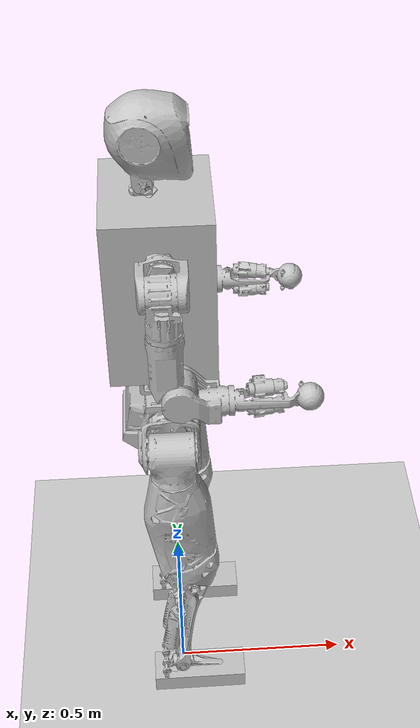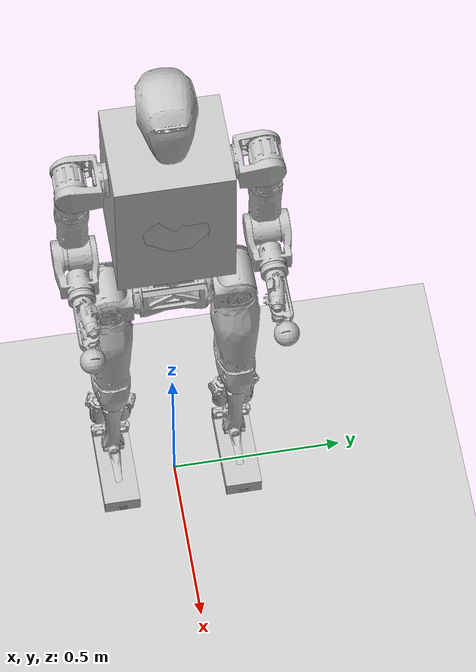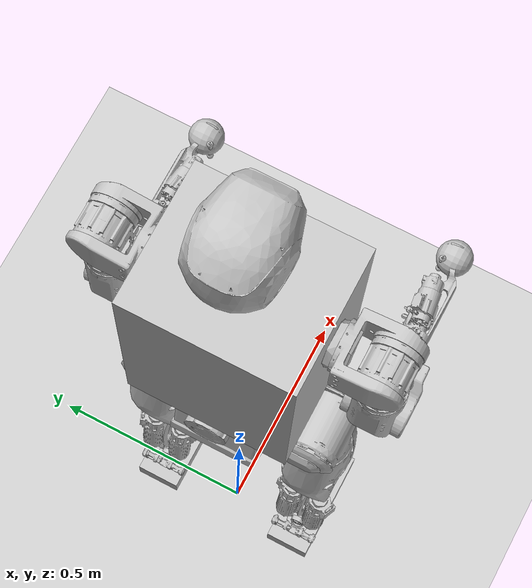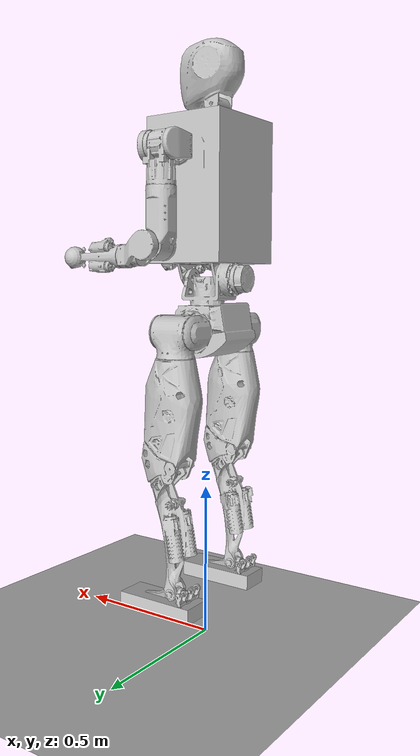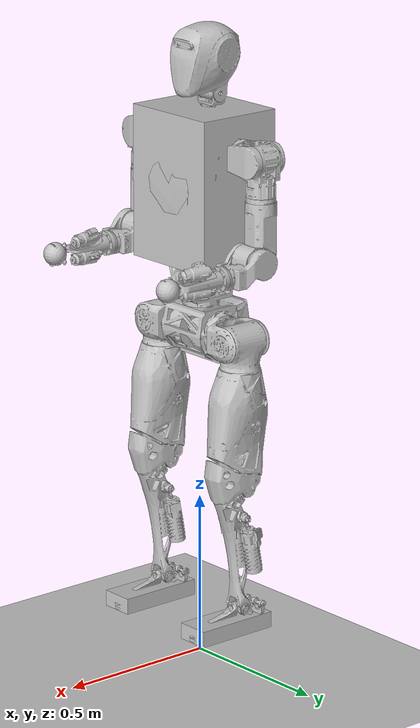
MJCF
<mujoco model="scene">
<include file="azureloong_v9.xml"/>

<statistic center="0 0 0.1" extent="0.8"/>

<visual>
  <headlight diffuse="0.6 0.6 0.6" ambient="0.3 0.3 0.3" specular="0 0 0"/>
  <rgba haze="0.15 0.25 0.35 1"/>
  <global azimuth="150" elevation="-20"/>
</visual>

<asset>
  <texture type="skybox" builtin="gradient" rgb1="0.3 0.5 0.7" rgb2="0 0 0" width="512" height="3072"/>
  <texture type="2d" name="groundplane" builtin="checker" mark="edge" rgb1="0.2 0.3 0.4" rgb2="0.1 0.2 0.3"
           markrgb="0.8 0.8 0.8" width="300" height="300"/>
  <material name="groundplane" texture="groundplane" texuniform="true" texrepeat="5 5" reflectance="0.2"/>
</asset>

<worldbody>
  <light pos="0 0 1.5" dir="0 0 -1" directional="true"/>
  <geom name="floor" size="0 0 1" pos="0 0 0" type="plane" material="groundplane"/>
</worldbody>
</mujoco>

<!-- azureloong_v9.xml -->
<mujoco model="azureloong_v9">
  <compiler angle="radian" meshdir="meshes/"/>
    <option timestep="0.001"  tolerance="1e-10" solver="Newton" jacobian="dense" cone="pyramidal" gravity="0 0 -9.81">  <!--integrator="RK4"  iteration="50"-->
        <flag contact="enable" energy="enable"/>
    </option>
    <size njmax="500" nconmax="1000" />
    <default>
        <light castshadow="false" />
        <geom rgba="0.784 0.784 0.784 1"/>
        <default class="visual">
            <geom contype="0" conaffinity="0" group="1" type="mesh" euler="1.57 0 0" />
        </default>
        <default class="collision">
            <geom contype="1" conaffinity="1" friction="1.0 0.3 0.3"
                margin="0.001" group="0" euler="1.57 0 0" />
        </default>
        <joint damping="0.1" frictionloss="0.02" armature="0.01"/>
    </default>
  <asset>
    <mesh name="base_link" file="base_link.STL"/>
    <mesh name="link_head_yaw" file="link_head_yaw.STL"/>
    <mesh name="link_head_pitch" file="link_head_pitch.STL"/>
    <mesh name="link_waist_roll" file="link_waist_roll.STL"/>
    <mesh name="link_waist_yaw" file="link_waist_yaw.STL"/>
    <mesh name="link_hip_r_pitch" file="link_hip_r_pitch.STL"/>
    <mesh name="link_hip_r_roll" file="link_hip_r_roll.STL"/>
    <mesh name="link_hip_r_yaw" file="link_hip_r_yaw.STL"/>
    <mesh name="link_knee_r_pitch" file="link_knee_r_pitch.STL"/>
    <mesh name="link_ankle_r_pitch" file="link_ankle_r_pitch.STL"/>
    <mesh name="link_ankle_r_roll" file="link_ankle_r_roll.STL"/>
    <mesh name="link_hip_l_pitch" file="link_hip_l_pitch.STL"/>
    <mesh name="link_hip_l_roll" file="link_hip_l_roll.STL"/>
    <mesh name="link_hip_l_yaw" file="link_hip_l_yaw.STL"/>
    <mesh name="link_knee_l_pitch" file="link_knee_l_pitch.STL"/>
    <mesh name="link_ankle_l_pitch" file="link_ankle_l_pitch.STL"/>
    <mesh name="link_ankle_l_roll" file="link_ankle_l_roll.STL"/>
    <mesh name="link_arm_r_01" file="link_arm_r_01.STL"/>
    <mesh name="link_arm_r_02" file="link_arm_r_02.STL"/>
    <mesh name="link_arm_r_03" file="link_arm_r_03.STL"/>
    <mesh name="link_arm_r_04" file="link_arm_r_04.STL"/>
    <mesh name="link_arm_r_05" file="link_arm_r_05.STL"/>
    <mesh name="link_arm_r_06" file="link_arm_r_06.STL"/>
    <mesh name="link_arm_r_07" file="link_arm_r_07.STL"/>
    <mesh name="link_arm_l_01" file="link_arm_l_01.STL"/>
    <mesh name="link_arm_l_02" file="link_arm_l_02.STL"/>
    <mesh name="link_arm_l_03" file="link_arm_l_03.STL"/>
    <mesh name="link_arm_l_04" file="link_arm_l_04.STL"/>
    <mesh name="link_arm_l_05" file="link_arm_l_05.STL"/>
    <mesh name="link_arm_l_06" file="link_arm_l_06.STL"/>
    <mesh name="link_arm_l_07" file="link_arm_l_07.STL"/>
  </asset>
  <worldbody>
    <body name="base_link" pos="0 0 1.25">
      <freejoint name="float_base"/>
      <inertial  pos="-0.011474 -0.0069363 0.21891" mass="24.307" fullinertia="0.59845 0.46392 0.29986 0.0016581 0.025644 -0.014216" />
      <geom type="mesh" contype="0" conaffinity="0" group="1" density="0" rgba="0.75294 0.75294 0.75294 1" mesh="base_link"/>
      <geom name="base_link_collision" size="0.1375 0.1625 0.2325" pos="-0.013 0 0.2325" type="box" rgba="0.75294 0.75294 0.75294 1"/>
      <site name="imu" quat="1 0 0 0"/>
      <body name="link_arm_l_01" pos="-0.0075002 0.17524 0.35025">
        <inertial pos="0.0031719 0.044974 3.524e-05" quat="-0.0106847 0.7074 0.00872866 0.706679" mass="0.57933" diaginertia="0.0020563 0.00175975 0.00116215"/>
        <joint name="J_arm_l_01" pos="0 0 0" axis="0 1 0" limited="true" range="-3.1416 3.1416"/>
        <geom type="mesh" contype="0" conaffinity="0" group="1" density="0" rgba="0.75294 0.75294 0.75294 1" mesh="link_arm_l_01"/>
        <body name="link_arm_l_02" pos="0 0.088 0">
          <inertial pos="0.0039951 2.47e-06 -0.048645" quat="0.706728 0.0319836 0.0320388 0.706036" mass="3.2937" diaginertia="0.011243 0.0108914 0.00351274"/>
          <joint name="J_arm_l_02" pos="0 0 0" axis="1 0 0" limited="true" range="0 3.1416"/>
          <geom type="mesh" contype="0" conaffinity="0" group="1" density="0" rgba="0.75294 0.75294 0.75294 1" mesh="link_arm_l_02"/>
          <body name="link_arm_l_03" pos="0 0 -0.122">
            <inertial pos="0.0199347 0.00744666 -0.143271" quat="0.379808 -0.0923652 -0.0855735 0.916456" mass="1.79702" diaginertia="0.00762178 0.00757974 0.00204741"/>
            <joint name="J_arm_l_03" pos="0 0 0" axis="0 0 1" limited="true" range="-3.1416 3.1416"/>
            <geom type="mesh" contype="0" conaffinity="0" group="1" density="0" rgba="0.75294 0.75294 0.75294 1" mesh="link_arm_l_03"/>
            <body name="link_arm_l_04" pos="0.03 0 -0.178">
              <inertial pos="0.0749516 0.00483148 -0.0230651" quat="0.109396 0.798106 -0.0740883 0.587852" mass="1.28644" diaginertia="0.0040918 0.00327713 0.00180294"/>
              <joint name="J_arm_l_04" pos="0 0 0" axis="0 1 0" limited="true" range="-1.5708 2.3562"/>
              <geom type="mesh" contype="0" conaffinity="0" group="1" density="0" rgba="0.75294 0.75294 0.75294 1" mesh="link_arm_l_04"/>
              <body name="link_arm_l_05" pos="0.1198 0 -0.03">
                <inertial pos="0.0901946 -0.0065972 -0.00028185" quat="0.52046 0.517873 0.481843 0.478285" mass="1.23772" diaginertia="0.0029895 0.00231002 0.00117052"/>
                <joint name="J_arm_l_05" pos="0 0 0" axis="1 0 0" limited="true" range="-3.1416 3.1416"/>
                <geom type="mesh" contype="0" conaffinity="0" group="1" density="0" rgba="0.75294 0.75294 0.75294 1" mesh="link_arm_l_05"/>
                <body name="link_arm_l_06" pos="0.1878 -0.0025 0">
                  <inertial pos="5.836e-05 -1.702e-05 0" mass="0.0159267" diaginertia="7.3e-07 6.8e-07 4.4e-07"/>
                  <joint name="J_arm_l_06" pos="0 0 0" axis="0 0 1" limited="true" range="-1.199 1.199"/>
                  <geom type="mesh" contype="0" conaffinity="0" group="1" density="0" rgba="1 1 1 1" mesh="link_arm_l_06"/>
                  <body name="link_arm_l_07">
                    <inertial pos="0.0148544 0.00216611 0.00068011" quat="0.998192 0.0011013 0.00568353 0.0598284" mass="0.089866" diaginertia="3.70197e-05 2.80825e-05 2.01978e-05"/>
                    <joint name="J_arm_l_07" pos="0 0 0" axis="0 1 0" limited="true" range="-0.48869 0.48869"/>
                    <geom type="mesh" contype="0" conaffinity="0" group="1" density="0" rgba="0.75294 0.75294 0.75294 1" mesh="link_arm_l_07"/>
                    <geom name="link_arm_l_07_collision" class="collision" type="sphere" size="0.035" pos="0.0148544 0.00216611 0.00068011" rgba="0.75294 0.75294 0.75294 1"/>
                  </body>
                </body>
              </body>
            </body>
          </body>
        </body>
      </body>
      <body name="link_arm_r_01" pos="-0.0075002 -0.17524 0.35025">
        <inertial pos="0.0031719 -0.044974 3.524e-05" quat="0.0106847 0.7074 -0.00872866 0.706679" mass="0.57933" diaginertia="0.0020563 0.00175975 0.00116215"/>
        <joint name="J_arm_r_01" pos="0 0 0" axis="0 1 0" limited="true" range="-3.1416 3.1416"/>
        <geom type="mesh" contype="0" conaffinity="0" group="1" density="0" rgba="0.75294 0.75294 0.75294 1" mesh="link_arm_r_01"/>
        <body name="link_arm_r_02" pos="0 -0.088 0">
          <inertial pos="0.0039951 -2.47e-06 -0.048645" quat="0.706036 0.0320388 0.0319836 0.706728" mass="3.2937" diaginertia="0.011243 0.0108914 0.00351274"/>
          <joint name="J_arm_r_02" pos="0 0 0" axis="1 0 0" limited="true" range="-3.1416 0"/>
          <geom type="mesh" contype="0" conaffinity="0" group="1" density="0" rgba="0.75294 0.75294 0.75294 1" mesh="link_arm_r_02"/>
          <body name="link_arm_r_03" pos="0 0 -0.122">
            <inertial pos="0.0199347 -0.00744666 -0.143271" quat="0.916456 -0.0855735 -0.0923652 0.379808" mass="1.79702" diaginertia="0.00762178 0.00757974 0.00204741"/>
            <joint name="J_arm_r_03" pos="0 0 0" axis="0 0 1" limited="true" range="-3.1416 3.1416"/>
            <geom type="mesh" contype="0" conaffinity="0" group="1" density="0" rgba="0.75294 0.75294 0.75294 1" mesh="link_arm_r_03"/>
            <body name="link_arm_r_04" pos="0.03 0 -0.178">
              <inertial pos="0.0749516 -0.00483148 -0.0230651" quat="-0.109396 0.798106 0.0740883 0.587852" mass="1.28644" diaginertia="0.0040918 0.00327713 0.00180294"/>
              <joint name="J_arm_r_04" pos="0 0 0" axis="0 1 0" limited="true" range="-1.5708 2.3562"/>
              <geom type="mesh" contype="0" conaffinity="0" group="1" density="0" rgba="0.75294 0.75294 0.75294 1" mesh="link_arm_r_04"/>
              <body name="link_arm_r_05" pos="0.1198 0 -0.03">
                <inertial pos="0.0901946 0.0065972 -0.00028185" quat="0.478285 0.481843 0.517873 0.52046" mass="1.23772" diaginertia="0.0029895 0.00231002 0.00117052"/>
                <joint name="J_arm_r_05" pos="0 0 0" axis="1 0 0" limited="true" range="-3.1416 3.1416"/>
                <geom type="mesh" contype="0" conaffinity="0" group="1" density="0" rgba="0.75294 0.75294 0.75294 1" mesh="link_arm_r_05"/>
                <body name="link_arm_r_06" pos="0.1878 0.0025 0">
                  <inertial pos="5.836e-05 1.702e-05 0" mass="0.0159267" diaginertia="7.3e-07 6.8e-07 4.4e-07"/>
                  <joint name="J_arm_r_06" pos="0 0 0" axis="0 0 1" limited="true" range="-1.199 1.199"/>
                  <geom type="mesh" contype="0" conaffinity="0" group="1" density="0" rgba="0.77647 0.75686 0.73725 1" mesh="link_arm_r_06"/>
                  <body name="link_arm_r_07">
                    <inertial pos="0.0148544 -0.00216611 0.00068011" quat="0.998192 -0.0011013 0.00568353 -0.0598284" mass="0.089866" diaginertia="3.70197e-05 2.80825e-05 2.01978e-05"/>
                    <joint name="J_arm_r_07" pos="0 0 0" axis="0 1 0" limited="true" range="-0.48869 0.48869"/>
                    <geom type="mesh" contype="0" conaffinity="0" group="1" density="0" rgba="0.75294 0.75294 0.75294 1" mesh="link_arm_r_07"/>
                    <geom name="link_arm_r_07_collision" class="collision" type="sphere" size="0.035" pos="0.0148544 -0.00216611 0.00068011" rgba="0.75294 0.75294 0.75294 1"/>
                  </body>
                </body>
              </body>
            </body>
          </body>
        </body>
      </body>
      <body name="link_head_yaw" pos="-0.04086 0 0.46514">
        <inertial pos="-0.00048655 0.00062947 0.036904" quat="0.691608 0.719635 0.0401303 -0.0468415" mass="0.55251" diaginertia="0.000375126 0.000324027 0.000245587"/>
        <joint name="J_head_yaw" pos="0 0 0" axis="-0.0018394 0 0.999998" limited="true" range="-1.5708 1.5708"/>
        <geom type="mesh" contype="0" conaffinity="0" group="1" density="0" rgba="0.75294 0.75294 0.75294 1" mesh="link_head_yaw"/>
        <body name="link_head_pitch" pos="-7.5415e-05 0 0.041">
          <inertial pos="0.059538 0.00014687 0.11057" quat="0.676559 0.210481 0.221307 0.670066" mass="1.2912" diaginertia="0.00788473 0.00614565 0.00487802"/>
          <joint name="J_head_pitch" pos="0 0 0" axis="0 1 0" limited="true" range="-0.7854 0.7854"/>
          <geom type="mesh" contype="0" conaffinity="0" group="1" density="0" rgba="0.75294 0.75294 0.75294 1" mesh="link_head_pitch"/>
        </body>
      </body>
      <body name="link_waist_roll" pos="-0.002 0 -0.05">
        <inertial pos="-0.045069 1.442e-05 -0.020062" quat="0.402103 0.589976 0.556318 0.425148" mass="4.2447" diaginertia="0.0192303 0.0191245 0.00638661"/>
        <joint name="J_waist_roll" pos="0 0 0" axis="1 0 0" limited="true" range="-0.7854 0.7854"/>
        <geom type="mesh" contype="0" conaffinity="0" group="1" density="0" rgba="0.75294 0.75294 0.75294 1" mesh="link_waist_roll"/>
        <body name="link_waist_yaw" pos="0 0 -0.0695">
          <inertial pos="-0.00986776 -3.74e-06 -0.0884809" quat="0.52251 0.522342 -0.476597 0.476443" mass="9.02251" diaginertia="0.0573129 0.0560423 0.0344752"/>
          <joint name="J_waist_yaw" pos="0 0 0" axis="0 0 1" limited="true" range="-3.1416 3.1416"/>
          <geom type="mesh" contype="0" conaffinity="0" group="1" density="0" rgba="0.75294 0.75294 0.75294 1" mesh="link_waist_yaw"/>
          <body name="link_hip_l_pitch" pos="0 0.0925 -0.0990523">
            <inertial pos="0.0022283 0.053191 6.23e-06" quat="-0.0255392 0.706746 0.0217677 0.706671" mass="1.0136" diaginertia="0.00471441 0.00421499 0.00224559"/>
            <joint name="J_hip_l_pitch" pos="0 0 0" axis="0 1 0" limited="true" range="-3.1416 3.1416"/>
            <geom type="mesh" contype="0" conaffinity="0" group="1" density="0" rgba="0.75294 0.75294 0.75294 1" mesh="link_hip_l_pitch"/>
            <body name="link_hip_l_roll" pos="0 0.088 0">
              <inertial pos="-0.010123 0.00046484 -0.012887" quat="0.674713 -0.2074 -0.238992 0.666806" mass="3.0648" diaginertia="0.00766139 0.0063289 0.00562061"/>
              <joint name="J_hip_l_roll" pos="0 0 0" axis="1 0 0" limited="true" range="-0.17453 2.7925"/>
              <geom type="mesh" contype="0" conaffinity="0" group="1" density="0" rgba="0.75294 0.75294 0.75294 1" mesh="link_hip_l_roll"/>
              <body name="link_hip_l_yaw" pos="0 0 -0.0812">
                <inertial pos="0.010788 8.518e-05 -0.16131" quat="0.701695 -0.0795189 -0.0780077 0.703716" mass="7.8022" diaginertia="0.12982 0.118394 0.025285"/>
                <joint name="J_hip_l_yaw" pos="0 0 0" axis="0 0 1" limited="true" range="-3.1416 3.1416"/>
                <geom type="mesh" contype="0" conaffinity="0" group="1" density="0" rgba="0.75294 0.75294 0.75294 1" mesh="link_hip_l_yaw"/>
                <body name="link_knee_l_pitch" pos="0 0 -0.371">
                  <inertial pos="-0.0018739 5.902e-05 -0.18167" quat="0.995167 0.00152123 0.0965202 0.0179932" mass="4.0869" diaginertia="0.0692695 0.0679323 0.00590513"/>
                  <joint name="J_knee_l_pitch" pos="0 0 0" axis="0 1 0" limited="true" range="-0.0698 1.9884"/>
                  <geom type="mesh" contype="0" conaffinity="0" group="1" density="0" rgba="0.75294 0.75294 0.75294 1" mesh="link_knee_l_pitch"/>
                  <body name="link_ankle_l_pitch" pos="0 0 -0.386">
                    <inertial pos="0.00048335 0 0" quat="0.5 0.5 -0.5 0.5" mass="0.25847" diaginertia="0.00014342 9.642e-05 7.198e-05"/>
                    <joint name="J_ankle_l_pitch" pos="0 0 0" axis="0 1 0" limited="true" range="-1.0472 0.4785"/>
                    <geom type="mesh" contype="0" conaffinity="0" group="1" density="0" rgba="0.75294 0.75294 0.75294 1" mesh="link_ankle_l_pitch"/>
                    <body name="link_ankle_l_roll">
                      <inertial pos="0.028995 1.016e-05 -0.0411795" quat="0.000730135 0.755933 0.000650126 0.654649" mass="1.1352" diaginertia="0.00646542 0.00636668 0.00111746"/>
                      <joint name="J_ankle_l_roll" pos="0 0 0" axis="1 0 0" limited="true" range="-0.5236 0.5236"/>
                      <geom type="mesh" contype="0" conaffinity="0" group="1" density="0" rgba="0.75294 0.75294 0.75294 1" mesh="link_ankle_l_roll"/>
                      <geom name="link_ankle_l_roll_collision" size="0.135 0.0525 0.025" pos="0.05 0 -0.049" type="box" rgba="0.75294 0.75294 0.75294 1"/>
                    </body>
                  </body>
                </body>
              </body>
            </body>
          </body>
          <body name="link_hip_r_pitch" pos="0 -0.0925 -0.0990523">
            <inertial pos="0.00222832 -0.0531905 6.23e-06" quat="0.0255707 0.706854 -0.0217354 0.706563" mass="1.0136" diaginertia="0.00471444 0.00421501 0.0022456"/>
            <joint name="J_hip_r_pitch" pos="0 0 0" axis="0 1 0" limited="true" range="-3.1416 3.1416"/>
            <geom type="mesh" contype="0" conaffinity="0" group="1" density="0" rgba="0.75294 0.75294 0.75294 1" mesh="link_hip_r_pitch"/>
            <body name="link_hip_r_roll" pos="0 -0.088 0">
              <inertial pos="-0.010123 -0.00044984 -0.012887" quat="0.666806 -0.238992 -0.2074 0.674713" mass="3.0648" diaginertia="0.00766139 0.0063289 0.00562061"/>
              <joint name="J_hip_r_roll" pos="0 0 0" axis="1 0 0" limited="true" range="-2.7925 0.17453"/>
              <geom type="mesh" contype="0" conaffinity="0" group="1" density="0" rgba="0.75294 0.75294 0.75294 1" mesh="link_hip_r_roll"/>
              <body name="link_hip_r_yaw" pos="0 0 -0.0812">
                <inertial pos="0.0107875 -8.515e-05 -0.161311" quat="0.703716 -0.0780044 -0.0795158 0.701695" mass="7.80223" diaginertia="0.129818 0.118396 0.0252856"/>
                <joint name="J_hip_r_yaw" pos="0 0 0" axis="0 0 1" limited="true" range="-3.1416 3.1416"/>
                <geom type="mesh" contype="0" conaffinity="0" group="1" density="0" rgba="0.75294 0.75294 0.75294 1" mesh="link_hip_r_yaw"/>
                <body name="link_knee_r_pitch" pos="0 0 -0.371">
                  <inertial pos="-0.001874 -5.9e-05 -0.181668" quat="0.995167 -0.00152159 0.0965221 -0.0179965" mass="4.08687" diaginertia="0.0692694 0.0679324 0.00590504"/>
                  <joint name="J_knee_r_pitch" pos="0 0 0" axis="0 1 0" limited="true" range="-0.0698 1.9884"/>
                  <geom type="mesh" contype="0" conaffinity="0" group="1" density="0" rgba="0.75294 0.75294 0.75294 1" mesh="link_knee_r_pitch"/>
                  <body name="link_ankle_r_pitch" pos="0 0 -0.386">
                    <inertial pos="0.00048334 0 0" quat="0.5 0.5 -0.5 0.5" mass="0.258468" diaginertia="0.00014343 9.642e-05 7.198e-05"/>
                    <joint name="J_ankle_r_pitch" pos="0 0 0" axis="0 1 0" limited="true" range="-1.0472 0.4784"/>
                    <geom type="mesh" contype="0" conaffinity="0" group="1" density="0" rgba="0.75294 0.75294 0.75294 1" mesh="link_ankle_r_pitch"/>
                    <body name="link_ankle_r_roll">
                      <inertial pos="0.028995 -1.016e-05 -0.0411795" quat="0.00221427 0.755928 0.00276853 0.654645" mass="1.1352" diaginertia="0.00646539 0.00636668 0.00111746"/>
                      <joint name="J_ankle_r_roll" pos="0 0 0" axis="1 0 0" limited="true" range="-0.5236 0.5236"/>
                      <geom type="mesh" contype="0" conaffinity="0" group="1" density="0" rgba="0.75294 0.75294 0.75294 1" mesh="link_ankle_r_roll"/>
                      <geom name="link_ankle_r_roll_collision" size="0.135 0.0525 0.025" pos="0.05 0 -0.049" type="box" rgba="0.75294 0.75294 0.75294 1"/>
                    </body>
                  </body>
                </body>
              </body>
            </body>
          </body>
        </body>
      </body>
    </body>
  </worldbody>

  <actuator>
    <motor name="M_arm_l_01"  joint="J_arm_l_01" gear="1" ctrllimited="true" ctrlrange="-182 182"/>
    <motor name="M_arm_l_02"  joint="J_arm_l_02" gear="1" ctrllimited="true" ctrlrange="-182 182"/>
    <motor name="M_arm_l_03"  joint="J_arm_l_03" gear="1" ctrllimited="true" ctrlrange="-182 182"/>
    <motor name="M_arm_l_04"  joint="J_arm_l_04" gear="1" ctrllimited="true" ctrlrange="-107 107"/>
    <motor name="M_arm_l_05"  joint="J_arm_l_05" gear="1" ctrllimited="true" ctrlrange="-68 68"/>
    <motor name="M_arm_l_06"  joint="J_arm_l_06" gear="1" ctrllimited="true" ctrlrange="-11.5 11.5"/>
    <motor name="M_arm_l_07"  joint="J_arm_l_07" gear="1" ctrllimited="true" ctrlrange="-11.5 11.5"/>

    <motor name="M_arm_r_01"  joint="J_arm_r_01" gear="1" ctrllimited="true" ctrlrange="-182 182"/>
    <motor name="M_arm_r_02"  joint="J_arm_r_02" gear="1" ctrllimited="true" ctrlrange="-182 182"/>
    <motor name="M_arm_r_03"  joint="J_arm_r_03" gear="1" ctrllimited="true" ctrlrange="-182 182"/>
    <motor name="M_arm_r_04"  joint="J_arm_r_04" gear="1" ctrllimited="true" ctrlrange="-107 107"/>
    <motor name="M_arm_r_05"  joint="J_arm_r_05" gear="1" ctrllimited="true" ctrlrange="-68 68"/>
    <motor name="M_arm_r_06"  joint="J_arm_r_06" gear="1" ctrllimited="true" ctrlrange="-11.5 11.5"/>
    <motor name="M_arm_r_07"  joint="J_arm_r_07" gear="1" ctrllimited="true" ctrlrange="-11.5 11.5"/>

    <motor name="M_head_yaw"  joint="J_head_yaw" gear="1" ctrllimited="true" ctrlrange="-26 26"/>
    <motor name="M_head_pitch"  joint="J_head_pitch" gear="1" ctrllimited="true" ctrlrange="-26 26"/>

    <motor name="M_waist_roll"  joint="J_waist_roll" gear="1" ctrllimited="true" ctrlrange="-315 315"/>
    <motor name="M_waist_yaw"  joint="J_waist_yaw" gear="1" ctrllimited="true" ctrlrange="-121 121"/>

    <motor name="M_hip_l_pitch" joint="J_hip_l_pitch" gear="1" ctrllimited="true" ctrlrange="-396 396"/>
    <motor name="M_hip_l_roll"  joint="J_hip_l_roll" gear="1" ctrllimited="true" ctrlrange="-192 192"/>
    <motor name="M_hip_l_yaw"  joint="J_hip_l_yaw" gear="1" ctrllimited="true" ctrlrange="-192 192"/>
    <motor name="M_knee_l_pitch"  joint="J_knee_l_pitch" gear="1" ctrllimited="true" ctrlrange="-430 430"/>
    <motor name="M_ankle_l_pitch"  joint="J_ankle_l_pitch" gear="1" ctrllimited="true" ctrlrange="-230 230"/>
    <motor name="M_ankle_l_roll"  joint="J_ankle_l_roll" gear="1" ctrllimited="true" ctrlrange="-235 235"/>

    <motor name="M_hip_r_pitch"  joint="J_hip_r_pitch" gear="1" ctrllimited="true" ctrlrange="-396 396"/>
    <motor name="M_hip_r_roll"  joint="J_hip_r_roll" gear="1" ctrllimited="true" ctrlrange="-192 192"/>
    <motor name="M_hip_r_yaw"  joint="J_hip_r_yaw" gear="1" ctrllimited="true" ctrlrange="-192 192"/>
    <motor name="M_knee_r_pitch"  joint="J_knee_r_pitch" gear="1" ctrllimited="true" ctrlrange="-430 430"/>
    <motor name="M_ankle_r_pitch"  joint="J_ankle_r_pitch" gear="1" ctrllimited="true" ctrlrange="-230 230"/>
    <motor name="M_ankle_r_roll"  joint="J_ankle_r_roll" gear="1" ctrllimited="true" ctrlrange="-235 235"/>
  </actuator>

  <sensor>
    <framequat name="baselink-quat" objtype="site" objname="imu" />
    <velocimeter name="baselink-velocity" site="imu" />
    <gyro name="baselink-gyro" site="imu" />
    <accelerometer name="baselink-baseAcc" site="imu" />
  </sensor>

</mujoco>
